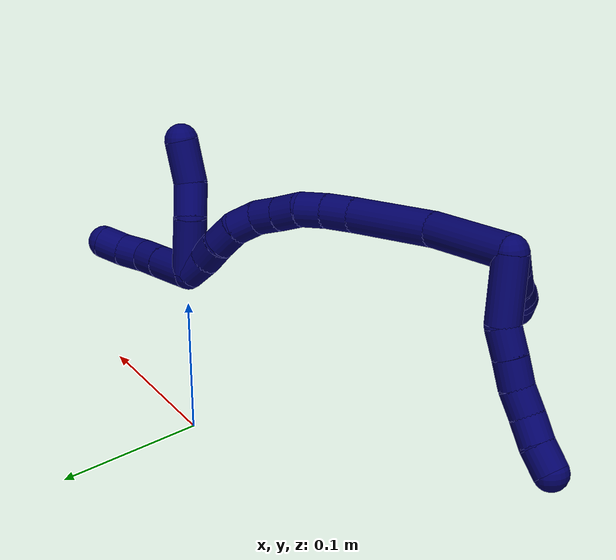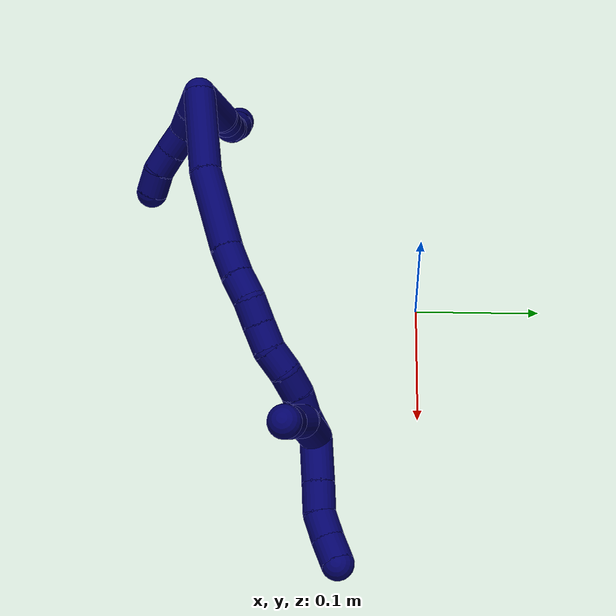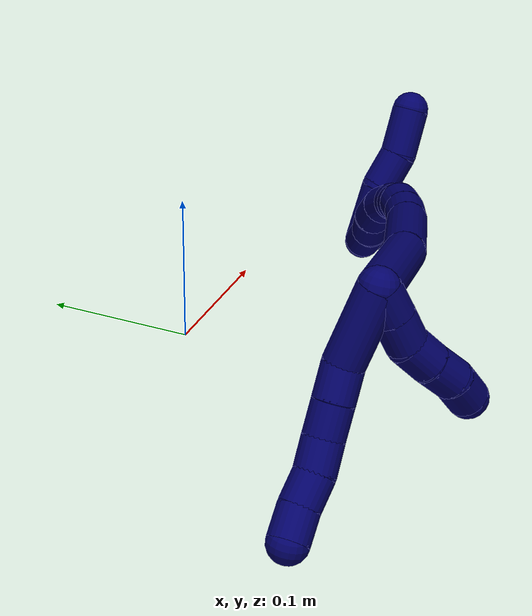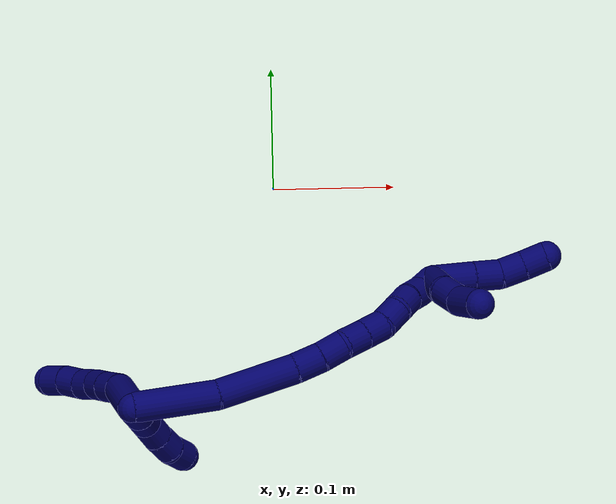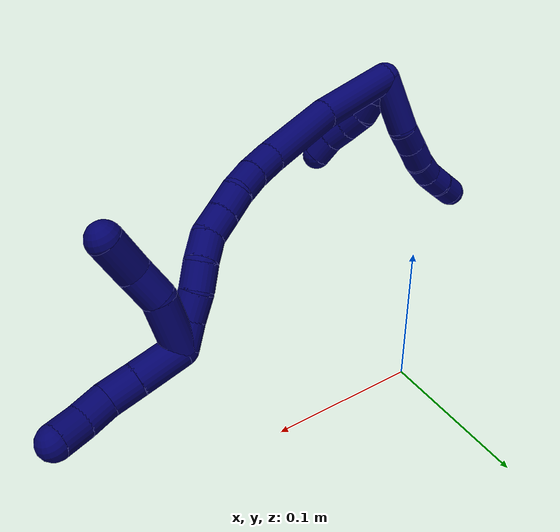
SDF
<sdf version="1.7">
 <world name="default">
  <model name="7">
   <static>0</static>
   <link name="7">
    <collision name="collision-cylinder-e_1_2_8">
     <pose>0.002093 0.004005 -0.023601 -2.9735 0.087209 -0.95577</pose>
     <geometry><cylinder><radius>0.0125</radius><length>0.04806</length></cylinder></geometry>
     <surface>
      <friction><ode><mu>1.16</mu><mu2>1.16</mu2><slip1>0</slip1><slip2>0</slip2></ode></friction>
      <contact><ode><kp>1e+06</kp><kd>1</kd><max_vel>0</max_vel><min_depth>0.001</min_depth></ode></contact>
     </surface>
    </collision>
    <visual name="visual-cylinder-e_1_2_8">
     <pose>0.002093 0.004005 -0.023601 -2.9735 0.087209 -0.95577</pose>
     <geometry><cylinder><radius>0.0125</radius><length>0.04806</length></cylinder></geometry>
     <material><ambient>0.003922 0 0.403922 1</ambient></material>
    </visual>
    <collision name="collision-cylinder-e_2_8_9">
     <pose>0.001655 0.008659 -0.057481 -3.07849 -0.240979 2.63158</pose>
     <geometry><cylinder><radius>0.0125</radius><length>0.021211</length></cylinder></geometry>
     <surface>
      <friction><ode><mu>1.16</mu><mu2>1.16</mu2><slip1>0</slip1><slip2>0</slip2></ode></friction>
      <contact><ode><kp>1e+06</kp><kd>1</kd><max_vel>0</max_vel><min_depth>0.001</min_depth></ode></contact>
     </surface>
    </collision>
    <visual name="visual-cylinder-e_2_8_9">
     <pose>0.001655 0.008659 -0.057481 -3.07849 -0.240979 2.63158</pose>
     <geometry><cylinder><radius>0.0125</radius><length>0.021211</length></cylinder></geometry>
     <material><ambient>0.003922 0 0.403922 1</ambient></material>
    </visual>
    <collision name="collision-cylinder-e_3_9_10">
     <pose>-0.002992 0.009939 -0.077878 -3.0794 -0.205783 2.55642</pose>
     <geometry><cylinder><radius>0.0125</radius><length>0.020713</length></cylinder></geometry>
     <surface>
      <friction><ode><mu>1.16</mu><mu2>1.16</mu2><slip1>0</slip1><slip2>0</slip2></ode></friction>
      <contact><ode><kp>1e+06</kp><kd>1</kd><max_vel>0</max_vel><min_depth>0.001</min_depth></ode></contact>
     </surface>
    </collision>
    <visual name="visual-cylinder-e_3_9_10">
     <pose>-0.002992 0.009939 -0.077878 -3.0794 -0.205783 2.55642</pose>
     <geometry><cylinder><radius>0.0125</radius><length>0.020713</length></cylinder></geometry>
     <material><ambient>0.003922 0 0.403922 1</ambient></material>
    </visual>
    <collision name="collision-cylinder-e_4_10_11">
     <pose>-0.008853 0.011277 -0.097242 -3.0652 -0.383764 2.75312</pose>
     <geometry><cylinder><radius>0.0125</radius><length>0.02</length></cylinder></geometry>
     <surface>
      <friction><ode><mu>1.16</mu><mu2>1.16</mu2><slip1>0</slip1><slip2>0</slip2></ode></friction>
      <contact><ode><kp>1e+06</kp><kd>1</kd><max_vel>0</max_vel><min_depth>0.001</min_depth></ode></contact>
     </surface>
    </collision>
    <visual name="visual-cylinder-e_4_10_11">
     <pose>-0.008853 0.011277 -0.097242 -3.0652 -0.383764 2.75312</pose>
     <geometry><cylinder><radius>0.0125</radius><length>0.02</length></cylinder></geometry>
     <material><ambient>0.003922 0 0.403922 1</ambient></material>
    </visual>
    <collision name="collision-cylinder-e_5_11_12">
     <pose>-0.016914 0.014619 -0.115115 -2.84526 -0.4464 1.97823</pose>
     <geometry><cylinder><radius>0.0125</radius><length>0.020001</length></cylinder></geometry>
     <surface>
      <friction><ode><mu>1.16</mu><mu2>1.16</mu2><slip1>0</slip1><slip2>0</slip2></ode></friction>
      <contact><ode><kp>1e+06</kp><kd>1</kd><max_vel>0</max_vel><min_depth>0.001</min_depth></ode></contact>
     </surface>
    </collision>
    <visual name="visual-cylinder-e_5_11_12">
     <pose>-0.016914 0.014619 -0.115115 -2.84526 -0.4464 1.97823</pose>
     <geometry><cylinder><radius>0.0125</radius><length>0.020001</length></cylinder></geometry>
     <material><ambient>0.003922 0 0.403922 1</ambient></material>
    </visual>
    <collision name="collision-cylinder-e_6_12_6">
     <pose>-0.026449 0.018791 -0.132143 -2.96048 -0.548411 2.51709</pose>
     <geometry><cylinder><radius>0.0125</radius><length>0.020015</length></cylinder></geometry>
     <surface>
      <friction><ode><mu>1.16</mu><mu2>1.16</mu2><slip1>0</slip1><slip2>0</slip2></ode></friction>
      <contact><ode><kp>1e+06</kp><kd>1</kd><max_vel>0</max_vel><min_depth>0.001</min_depth></ode></contact>
     </surface>
    </collision>
    <visual name="visual-cylinder-e_6_12_6">
     <pose>-0.026449 0.018791 -0.132143 -2.96048 -0.548411 2.51709</pose>
     <geometry><cylinder><radius>0.0125</radius><length>0.020015</length></cylinder></geometry>
     <material><ambient>0.003922 0 0.403922 1</ambient></material>
    </visual>
    <collision name="collision-cylinder-e_1_2_13">
     <pose>0.002421 -0.006064 -0.007574 2.46643 0.244539 0.673486</pose>
     <geometry><cylinder><radius>0.0125</radius><length>0.02</length></cylinder></geometry>
     <surface>
      <friction><ode><mu>1.16</mu><mu2>1.16</mu2><slip1>0</slip1><slip2>0</slip2></ode></friction>
      <contact><ode><kp>1e+06</kp><kd>1</kd><max_vel>0</max_vel><min_depth>0.001</min_depth></ode></contact>
     </surface>
    </collision>
    <visual name="visual-cylinder-e_1_2_13">
     <pose>0.002421 -0.006064 -0.007574 2.46643 0.244539 0.673486</pose>
     <geometry><cylinder><radius>0.0125</radius><length>0.02</length></cylinder></geometry>
     <material><ambient>0.003922 0 0.403922 1</ambient></material>
    </visual>
    <collision name="collision-cylinder-e_2_13_14">
     <pose>0.007093 -0.018098 -0.022848 2.48212 0.226987 0.643012</pose>
     <geometry><cylinder><radius>0.0125</radius><length>0.02</length></cylinder></geometry>
     <surface>
      <friction><ode><mu>1.16</mu><mu2>1.16</mu2><slip1>0</slip1><slip2>0</slip2></ode></friction>
      <contact><ode><kp>1e+06</kp><kd>1</kd><max_vel>0</max_vel><min_depth>0.001</min_depth></ode></contact>
     </surface>
    </collision>
    <visual name="visual-cylinder-e_2_13_14">
     <pose>0.007093 -0.018098 -0.022848 2.48212 0.226987 0.643012</pose>
     <geometry><cylinder><radius>0.0125</radius><length>0.02</length></cylinder></geometry>
     <material><ambient>0.003922 0 0.403922 1</ambient></material>
    </visual>
    <collision name="collision-cylinder-e_3_14_15">
     <pose>0.011897 -0.032288 -0.035639 2.12532 0.25826 0.458145</pose>
     <geometry><cylinder><radius>0.0125</radius><length>0.02</length></cylinder></geometry>
     <surface>
      <friction><ode><mu>1.16</mu><mu2>1.16</mu2><slip1>0</slip1><slip2>0</slip2></ode></friction>
      <contact><ode><kp>1e+06</kp><kd>1</kd><max_vel>0</max_vel><min_depth>0.001</min_depth></ode></contact>
     </surface>
    </collision>
    <visual name="visual-cylinder-e_3_14_15">
     <pose>0.011897 -0.032288 -0.035639 2.12532 0.25826 0.458145</pose>
     <geometry><cylinder><radius>0.0125</radius><length>0.02</length></cylinder></geometry>
     <material><ambient>0.003922 0 0.403922 1</ambient></material>
    </visual>
    <collision name="collision-cylinder-e_4_15_16">
     <pose>0.017816 -0.048745 -0.045292 2.0765 0.343222 0.572039</pose>
     <geometry><cylinder><radius>0.0125</radius><length>0.02</length></cylinder></geometry>
     <surface>
      <friction><ode><mu>1.16</mu><mu2>1.16</mu2><slip1>0</slip1><slip2>0</slip2></ode></friction>
      <contact><ode><kp>1e+06</kp><kd>1</kd><max_vel>0</max_vel><min_depth>0.001</min_depth></ode></contact>
     </surface>
    </collision>
    <visual name="visual-cylinder-e_4_15_16">
     <pose>0.017816 -0.048745 -0.045292 2.0765 0.343222 0.572039</pose>
     <geometry><cylinder><radius>0.0125</radius><length>0.02</length></cylinder></geometry>
     <material><ambient>0.003922 0 0.403922 1</ambient></material>
    </visual>
    <collision name="collision-cylinder-e_5_16_5">
     <pose>0.025862 -0.063497 -0.055825 2.31276 0.48713 1.02844</pose>
     <geometry><cylinder><radius>0.0125</radius><length>0.02</length></cylinder></geometry>
     <surface>
      <friction><ode><mu>1.16</mu><mu2>1.16</mu2><slip1>0</slip1><slip2>0</slip2></ode></friction>
      <contact><ode><kp>1e+06</kp><kd>1</kd><max_vel>0</max_vel><min_depth>0.001</min_depth></ode></contact>
     </surface>
    </collision>
    <visual name="visual-cylinder-e_5_16_5">
     <pose>0.025862 -0.063497 -0.055825 2.31276 0.48713 1.02844</pose>
     <geometry><cylinder><radius>0.0125</radius><length>0.02</length></cylinder></geometry>
     <material><ambient>0.003922 0 0.403922 1</ambient></material>
    </visual>
    <collision name="collision-cylinder-e_1_2_17">
     <pose>0.032903 -0.010797 0.002487 1.34443 1.246 1.03883</pose>
     <geometry><cylinder><radius>0.0125</radius><length>0.069436</length></cylinder></geometry>
     <surface>
      <friction><ode><mu>1.16</mu><mu2>1.16</mu2><slip1>0</slip1><slip2>0</slip2></ode></friction>
      <contact><ode><kp>1e+06</kp><kd>1</kd><max_vel>0</max_vel><min_depth>0.001</min_depth></ode></contact>
     </surface>
    </collision>
    <visual name="visual-cylinder-e_1_2_17">
     <pose>0.032903 -0.010797 0.002487 1.34443 1.246 1.03883</pose>
     <geometry><cylinder><radius>0.0125</radius><length>0.069436</length></cylinder></geometry>
     <material><ambient>0.003922 0 0.403922 1</ambient></material>
    </visual>
    <collision name="collision-cylinder-e_2_17_18">
     <pose>0.098635 -0.026374 0.006443 1.2726 1.41962 1.13121</pose>
     <geometry><cylinder><radius>0.0125</radius><length>0.066416</length></cylinder></geometry>
     <surface>
      <friction><ode><mu>1.16</mu><mu2>1.16</mu2><slip1>0</slip1><slip2>0</slip2></ode></friction>
      <contact><ode><kp>1e+06</kp><kd>1</kd><max_vel>0</max_vel><min_depth>0.001</min_depth></ode></contact>
     </surface>
    </collision>
    <visual name="visual-cylinder-e_2_17_18">
     <pose>0.098635 -0.026374 0.006443 1.2726 1.41962 1.13121</pose>
     <geometry><cylinder><radius>0.0125</radius><length>0.066416</length></cylinder></geometry>
     <material><ambient>0.003922 0 0.403922 1</ambient></material>
    </visual>
    <collision name="collision-cylinder-e_3_18_19">
     <pose>0.143066 -0.031799 0.008499 0.832534 1.49579 0.778413</pose>
     <geometry><cylinder><radius>0.0125</radius><length>0.023268</length></cylinder></geometry>
     <surface>
      <friction><ode><mu>1.16</mu><mu2>1.16</mu2><slip1>0</slip1><slip2>0</slip2></ode></friction>
      <contact><ode><kp>1e+06</kp><kd>1</kd><max_vel>0</max_vel><min_depth>0.001</min_depth></ode></contact>
     </surface>
    </collision>
    <visual name="visual-cylinder-e_3_18_19">
     <pose>0.143066 -0.031799 0.008499 0.832534 1.49579 0.778413</pose>
     <geometry><cylinder><radius>0.0125</radius><length>0.023268</length></cylinder></geometry>
     <material><ambient>0.003922 0 0.403922 1</ambient></material>
    </visual>
    <collision name="collision-cylinder-e_4_19_20">
     <pose>0.165057 -0.032072 0.009069 -1.61477 1.53496 -1.57894</pose>
     <geometry><cylinder><radius>0.0125</radius><length>0.020794</length></cylinder></geometry>
     <surface>
      <friction><ode><mu>1.16</mu><mu2>1.16</mu2><slip1>0</slip1><slip2>0</slip2></ode></friction>
      <contact><ode><kp>1e+06</kp><kd>1</kd><max_vel>0</max_vel><min_depth>0.001</min_depth></ode></contact>
     </surface>
    </collision>
    <visual name="visual-cylinder-e_4_19_20">
     <pose>0.165057 -0.032072 0.009069 -1.61477 1.53496 -1.57894</pose>
     <geometry><cylinder><radius>0.0125</radius><length>0.020794</length></cylinder></geometry>
     <material><ambient>0.003922 0 0.403922 1</ambient></material>
    </visual>
    <collision name="collision-cylinder-e_5_20_21">
     <pose>0.185107 -0.032501 0.006552 2.83134 1.3054 2.73803</pose>
     <geometry><cylinder><radius>0.0125</radius><length>0.020021</length></cylinder></geometry>
     <surface>
      <friction><ode><mu>1.16</mu><mu2>1.16</mu2><slip1>0</slip1><slip2>0</slip2></ode></friction>
      <contact><ode><kp>1e+06</kp><kd>1</kd><max_vel>0</max_vel><min_depth>0.001</min_depth></ode></contact>
     </surface>
    </collision>
    <visual name="visual-cylinder-e_5_20_21">
     <pose>0.185107 -0.032501 0.006552 2.83134 1.3054 2.73803</pose>
     <geometry><cylinder><radius>0.0125</radius><length>0.020021</length></cylinder></geometry>
     <material><ambient>0.003922 0 0.403922 1</ambient></material>
    </visual>
    <collision name="collision-cylinder-e_6_21_22">
     <pose>0.204551 -0.033838 0.001932 2.89458 1.35096 2.83417</pose>
     <geometry><cylinder><radius>0.0125</radius><length>0.02005</length></cylinder></geometry>
     <surface>
      <friction><ode><mu>1.16</mu><mu2>1.16</mu2><slip1>0</slip1><slip2>0</slip2></ode></friction>
      <contact><ode><kp>1e+06</kp><kd>1</kd><max_vel>0</max_vel><min_depth>0.001</min_depth></ode></contact>
     </surface>
    </collision>
    <visual name="visual-cylinder-e_6_21_22">
     <pose>0.204551 -0.033838 0.001932 2.89458 1.35096 2.83417</pose>
     <geometry><cylinder><radius>0.0125</radius><length>0.02005</length></cylinder></geometry>
     <material><ambient>0.003922 0 0.403922 1</ambient></material>
    </visual>
    <collision name="collision-cylinder-e_7_22_23">
     <pose>0.223299 -0.032568 -0.004254 -2.72412 1.11015 -2.48327</pose>
     <geometry><cylinder><radius>0.0125</radius><length>0.020014</length></cylinder></geometry>
     <surface>
      <friction><ode><mu>1.16</mu><mu2>1.16</mu2><slip1>0</slip1><slip2>0</slip2></ode></friction>
      <contact><ode><kp>1e+06</kp><kd>1</kd><max_vel>0</max_vel><min_depth>0.001</min_depth></ode></contact>
     </surface>
    </collision>
    <visual name="visual-cylinder-e_7_22_23">
     <pose>0.223299 -0.032568 -0.004254 -2.72412 1.11015 -2.48327</pose>
     <geometry><cylinder><radius>0.0125</radius><length>0.020014</length></cylinder></geometry>
     <material><ambient>0.003922 0 0.403922 1</ambient></material>
    </visual>
    <collision name="collision-cylinder-e_8_23_24">
     <pose>0.239896 -0.030164 -0.014753 -3.04848 0.868368 -2.94132</pose>
     <geometry><cylinder><radius>0.0125</radius><length>0.02</length></cylinder></geometry>
     <surface>
      <friction><ode><mu>1.16</mu><mu2>1.16</mu2><slip1>0</slip1><slip2>0</slip2></ode></friction>
      <contact><ode><kp>1e+06</kp><kd>1</kd><max_vel>0</max_vel><min_depth>0.001</min_depth></ode></contact>
     </surface>
    </collision>
    <visual name="visual-cylinder-e_8_23_24">
     <pose>0.239896 -0.030164 -0.014753 -3.04848 0.868368 -2.94132</pose>
     <geometry><cylinder><radius>0.0125</radius><length>0.02</length></cylinder></geometry>
     <material><ambient>0.003922 0 0.403922 1</ambient></material>
    </visual>
    <collision name="collision-cylinder-e_9_24_25">
     <pose>0.254914 -0.030899 -0.027795 2.94213 0.830852 2.69545</pose>
     <geometry><cylinder><radius>0.0125</radius><length>0.02</length></cylinder></geometry>
     <surface>
      <friction><ode><mu>1.16</mu><mu2>1.16</mu2><slip1>0</slip1><slip2>0</slip2></ode></friction>
      <contact><ode><kp>1e+06</kp><kd>1</kd><max_vel>0</max_vel><min_depth>0.001</min_depth></ode></contact>
     </surface>
    </collision>
    <visual name="visual-cylinder-e_9_24_25">
     <pose>0.254914 -0.030899 -0.027795 2.94213 0.830852 2.69545</pose>
     <geometry><cylinder><radius>0.0125</radius><length>0.02</length></cylinder></geometry>
     <material><ambient>0.003922 0 0.403922 1</ambient></material>
    </visual>
    <collision name="collision-cylinder-e_10_25_1">
     <pose>0.270313 -0.031985 -0.04038 -3.09971 0.929643 -3.0581</pose>
     <geometry><cylinder><radius>0.0125</radius><length>0.02</length></cylinder></geometry>
     <surface>
      <friction><ode><mu>1.16</mu><mu2>1.16</mu2><slip1>0</slip1><slip2>0</slip2></ode></friction>
      <contact><ode><kp>1e+06</kp><kd>1</kd><max_vel>0</max_vel><min_depth>0.001</min_depth></ode></contact>
     </surface>
    </collision>
    <visual name="visual-cylinder-e_10_25_1">
     <pose>0.270313 -0.031985 -0.04038 -3.09971 0.929643 -3.0581</pose>
     <geometry><cylinder><radius>0.0125</radius><length>0.02</length></cylinder></geometry>
     <material><ambient>0.003922 0 0.403922 1</ambient></material>
    </visual>
    <collision name="collision-cylinder-e_1_1_26">
     <pose>0.275896 -0.032752 -0.025066 0.047771 -0.113561 -0.002716</pose>
     <geometry><cylinder><radius>0.0125</radius><length>0.042904</length></cylinder></geometry>
     <surface>
      <friction><ode><mu>1.16</mu><mu2>1.16</mu2><slip1>0</slip1><slip2>0</slip2></ode></friction>
      <contact><ode><kp>1e+06</kp><kd>1</kd><max_vel>0</max_vel><min_depth>0.001</min_depth></ode></contact>
     </surface>
    </collision>
    <visual name="visual-cylinder-e_1_1_26">
     <pose>0.275896 -0.032752 -0.025066 0.047771 -0.113561 -0.002716</pose>
     <geometry><cylinder><radius>0.0125</radius><length>0.042904</length></cylinder></geometry>
     <material><ambient>0.003922 0 0.403922 1</ambient></material>
    </visual>
    <collision name="collision-cylinder-e_2_26_27">
     <pose>0.274655 -0.037596 0.008154 0.310334 0.09469 0.014823</pose>
     <geometry><cylinder><radius>0.0125</radius><length>0.02517</length></cylinder></geometry>
     <surface>
      <friction><ode><mu>1.16</mu><mu2>1.16</mu2><slip1>0</slip1><slip2>0</slip2></ode></friction>
      <contact><ode><kp>1e+06</kp><kd>1</kd><max_vel>0</max_vel><min_depth>0.001</min_depth></ode></contact>
     </surface>
    </collision>
    <visual name="visual-cylinder-e_2_26_27">
     <pose>0.274655 -0.037596 0.008154 0.310334 0.09469 0.014823</pose>
     <geometry><cylinder><radius>0.0125</radius><length>0.02517</length></cylinder></geometry>
     <material><ambient>0.003922 0 0.403922 1</ambient></material>
    </visual>
    <collision name="collision-cylinder-e_3_27_4">
     <pose>0.278817 -0.042336 0.035741 0.058322 0.187243 0.005478</pose>
     <geometry><cylinder><radius>0.0125</radius><length>0.031926</length></cylinder></geometry>
     <surface>
      <friction><ode><mu>1.16</mu><mu2>1.16</mu2><slip1>0</slip1><slip2>0</slip2></ode></friction>
      <contact><ode><kp>1e+06</kp><kd>1</kd><max_vel>0</max_vel><min_depth>0.001</min_depth></ode></contact>
     </surface>
    </collision>
    <visual name="visual-cylinder-e_3_27_4">
     <pose>0.278817 -0.042336 0.035741 0.058322 0.187243 0.005478</pose>
     <geometry><cylinder><radius>0.0125</radius><length>0.031926</length></cylinder></geometry>
     <material><ambient>0.003922 0 0.403922 1</ambient></material>
    </visual>
    <collision name="collision-cylinder-e_1_1_28">
     <pose>0.294773 -0.03809 -0.045595 1.45173 1.19965 1.09102</pose>
     <geometry><cylinder><radius>0.0125</radius><length>0.035294</length></cylinder></geometry>
     <surface>
      <friction><ode><mu>1.16</mu><mu2>1.16</mu2><slip1>0</slip1><slip2>0</slip2></ode></friction>
      <contact><ode><kp>1e+06</kp><kd>1</kd><max_vel>0</max_vel><min_depth>0.001</min_depth></ode></contact>
     </surface>
    </collision>
    <visual name="visual-cylinder-e_1_1_28">
     <pose>0.294773 -0.03809 -0.045595 1.45173 1.19965 1.09102</pose>
     <geometry><cylinder><radius>0.0125</radius><length>0.035294</length></cylinder></geometry>
     <material><ambient>0.003922 0 0.403922 1</ambient></material>
    </visual>
    <collision name="collision-cylinder-e_2_28_29">
     <pose>0.321918 -0.048786 -0.044361 1.46203 1.1833 1.08461</pose>
     <geometry><cylinder><radius>0.0125</radius><length>0.023113</length></cylinder></geometry>
     <surface>
      <friction><ode><mu>1.16</mu><mu2>1.16</mu2><slip1>0</slip1><slip2>0</slip2></ode></friction>
      <contact><ode><kp>1e+06</kp><kd>1</kd><max_vel>0</max_vel><min_depth>0.001</min_depth></ode></contact>
     </surface>
    </collision>
    <visual name="visual-cylinder-e_2_28_29">
     <pose>0.321918 -0.048786 -0.044361 1.46203 1.1833 1.08461</pose>
     <geometry><cylinder><radius>0.0125</radius><length>0.023113</length></cylinder></geometry>
     <material><ambient>0.003922 0 0.403922 1</ambient></material>
    </visual>
    <collision name="collision-cylinder-e_3_29_30">
     <pose>0.343064 -0.054145 -0.042663 0.69423 1.41953 0.602665</pose>
     <geometry><cylinder><radius>0.0125</radius><length>0.021134</length></cylinder></geometry>
     <surface>
      <friction><ode><mu>1.16</mu><mu2>1.16</mu2><slip1>0</slip1><slip2>0</slip2></ode></friction>
      <contact><ode><kp>1e+06</kp><kd>1</kd><max_vel>0</max_vel><min_depth>0.001</min_depth></ode></contact>
     </surface>
    </collision>
    <visual name="visual-cylinder-e_3_29_30">
     <pose>0.343064 -0.054145 -0.042663 0.69423 1.41953 0.602665</pose>
     <geometry><cylinder><radius>0.0125</radius><length>0.021134</length></cylinder></geometry>
     <material><ambient>0.003922 0 0.403922 1</ambient></material>
    </visual>
    <collision name="collision-cylinder-e_4_30_3">
     <pose>0.363402 -0.055443 -0.038845 0.106883 1.31293 0.08238</pose>
     <geometry><cylinder><radius>0.0125</radius><length>0.020459</length></cylinder></geometry>
     <surface>
      <friction><ode><mu>1.16</mu><mu2>1.16</mu2><slip1>0</slip1><slip2>0</slip2></ode></friction>
      <contact><ode><kp>1e+06</kp><kd>1</kd><max_vel>0</max_vel><min_depth>0.001</min_depth></ode></contact>
     </surface>
    </collision>
    <visual name="visual-cylinder-e_4_30_3">
     <pose>0.363402 -0.055443 -0.038845 0.106883 1.31293 0.08238</pose>
     <geometry><cylinder><radius>0.0125</radius><length>0.020459</length></cylinder></geometry>
     <material><ambient>0.003922 0 0.403922 1</ambient></material>
    </visual>
    <collision name="collision-sphere-3">
     <pose>0.373293 -0.055721 -0.036252 0 -0 0</pose>
     <geometry><sphere><radius>0.0125</radius></sphere></geometry>
     <surface>
      <friction><ode><mu>1.16</mu><mu2>1.16</mu2><slip1>0</slip1><slip2>0</slip2></ode></friction>
      <contact><ode><kp>1e+06</kp><kd>1</kd><max_vel>0</max_vel><min_depth>0.001</min_depth></ode></contact>
     </surface>
    </collision>
    <visual name="visual-sphere-3">
     <pose>0.373293 -0.055721 -0.036252 0 -0 0</pose>
     <geometry><sphere><radius>0.0125</radius></sphere></geometry>
     <material><ambient>0.003922 0 0.403922 1</ambient></material>
    </visual>
    <collision name="collision-sphere-30">
     <pose>0.353511 -0.055164 -0.041439 0 -0 0</pose>
     <geometry><sphere><radius>0.0125</radius></sphere></geometry>
     <surface>
      <friction><ode><mu>1.16</mu><mu2>1.16</mu2><slip1>0</slip1><slip2>0</slip2></ode></friction>
      <contact><ode><kp>1e+06</kp><kd>1</kd><max_vel>0</max_vel><min_depth>0.001</min_depth></ode></contact>
     </surface>
    </collision>
    <visual name="visual-sphere-30">
     <pose>0.353511 -0.055164 -0.041439 0 -0 0</pose>
     <geometry><sphere><radius>0.0125</radius></sphere></geometry>
     <material><ambient>0.003922 0 0.403922 1</ambient></material>
    </visual>
    <collision name="collision-sphere-29">
     <pose>0.332617 -0.053127 -0.043887 0 -0 0</pose>
     <geometry><sphere><radius>0.0125</radius></sphere></geometry>
     <surface>
      <friction><ode><mu>1.16</mu><mu2>1.16</mu2><slip1>0</slip1><slip2>0</slip2></ode></friction>
      <contact><ode><kp>1e+06</kp><kd>1</kd><max_vel>0</max_vel><min_depth>0.001</min_depth></ode></contact>
     </surface>
    </collision>
    <visual name="visual-sphere-29">
     <pose>0.332617 -0.053127 -0.043887 0 -0 0</pose>
     <geometry><sphere><radius>0.0125</radius></sphere></geometry>
     <material><ambient>0.003922 0 0.403922 1</ambient></material>
    </visual>
    <collision name="collision-sphere-28">
     <pose>0.311218 -0.044445 -0.044835 0 -0 0</pose>
     <geometry><sphere><radius>0.0125</radius></sphere></geometry>
     <surface>
      <friction><ode><mu>1.16</mu><mu2>1.16</mu2><slip1>0</slip1><slip2>0</slip2></ode></friction>
      <contact><ode><kp>1e+06</kp><kd>1</kd><max_vel>0</max_vel><min_depth>0.001</min_depth></ode></contact>
     </surface>
    </collision>
    <visual name="visual-sphere-28">
     <pose>0.311218 -0.044445 -0.044835 0 -0 0</pose>
     <geometry><sphere><radius>0.0125</radius></sphere></geometry>
     <material><ambient>0.003922 0 0.403922 1</ambient></material>
    </visual>
    <collision name="collision-sphere-4">
     <pose>0.281788 -0.04325 0.051398 0 -0 0</pose>
     <geometry><sphere><radius>0.0125</radius></sphere></geometry>
     <surface>
      <friction><ode><mu>1.16</mu><mu2>1.16</mu2><slip1>0</slip1><slip2>0</slip2></ode></friction>
      <contact><ode><kp>1e+06</kp><kd>1</kd><max_vel>0</max_vel><min_depth>0.001</min_depth></ode></contact>
     </surface>
    </collision>
    <visual name="visual-sphere-4">
     <pose>0.281788 -0.04325 0.051398 0 -0 0</pose>
     <geometry><sphere><radius>0.0125</radius></sphere></geometry>
     <material><ambient>0.003922 0 0.403922 1</ambient></material>
    </visual>
    <collision name="collision-sphere-27">
     <pose>0.275845 -0.041422 0.020084 0 -0 0</pose>
     <geometry><sphere><radius>0.0125</radius></sphere></geometry>
     <surface>
      <friction><ode><mu>1.16</mu><mu2>1.16</mu2><slip1>0</slip1><slip2>0</slip2></ode></friction>
      <contact><ode><kp>1e+06</kp><kd>1</kd><max_vel>0</max_vel><min_depth>0.001</min_depth></ode></contact>
     </surface>
    </collision>
    <visual name="visual-sphere-27">
     <pose>0.275845 -0.041422 0.020084 0 -0 0</pose>
     <geometry><sphere><radius>0.0125</radius></sphere></geometry>
     <material><ambient>0.003922 0 0.403922 1</ambient></material>
    </visual>
    <collision name="collision-sphere-26">
     <pose>0.273465 -0.03377 -0.003776 0 -0 0</pose>
     <geometry><sphere><radius>0.0125</radius></sphere></geometry>
     <surface>
      <friction><ode><mu>1.16</mu><mu2>1.16</mu2><slip1>0</slip1><slip2>0</slip2></ode></friction>
      <contact><ode><kp>1e+06</kp><kd>1</kd><max_vel>0</max_vel><min_depth>0.001</min_depth></ode></contact>
     </surface>
    </collision>
    <visual name="visual-sphere-26">
     <pose>0.273465 -0.03377 -0.003776 0 -0 0</pose>
     <geometry><sphere><radius>0.0125</radius></sphere></geometry>
     <material><ambient>0.003922 0 0.403922 1</ambient></material>
    </visual>
    <collision name="collision-sphere-1">
     <pose>0.278327 -0.031735 -0.046356 0 -0 0</pose>
     <geometry><sphere><radius>0.0125</radius></sphere></geometry>
     <surface>
      <friction><ode><mu>1.16</mu><mu2>1.16</mu2><slip1>0</slip1><slip2>0</slip2></ode></friction>
      <contact><ode><kp>1e+06</kp><kd>1</kd><max_vel>0</max_vel><min_depth>0.001</min_depth></ode></contact>
     </surface>
    </collision>
    <visual name="visual-sphere-1">
     <pose>0.278327 -0.031735 -0.046356 0 -0 0</pose>
     <geometry><sphere><radius>0.0125</radius></sphere></geometry>
     <material><ambient>0.003922 0 0.403922 1</ambient></material>
    </visual>
    <collision name="collision-sphere-25">
     <pose>0.262299 -0.032235 -0.034404 0 -0 0</pose>
     <geometry><sphere><radius>0.0125</radius></sphere></geometry>
     <surface>
      <friction><ode><mu>1.16</mu><mu2>1.16</mu2><slip1>0</slip1><slip2>0</slip2></ode></friction>
      <contact><ode><kp>1e+06</kp><kd>1</kd><max_vel>0</max_vel><min_depth>0.001</min_depth></ode></contact>
     </surface>
    </collision>
    <visual name="visual-sphere-25">
     <pose>0.262299 -0.032235 -0.034404 0 -0 0</pose>
     <geometry><sphere><radius>0.0125</radius></sphere></geometry>
     <material><ambient>0.003922 0 0.403922 1</ambient></material>
    </visual>
    <collision name="collision-sphere-24">
     <pose>0.247529 -0.029563 -0.021186 0 -0 0</pose>
     <geometry><sphere><radius>0.0125</radius></sphere></geometry>
     <surface>
      <friction><ode><mu>1.16</mu><mu2>1.16</mu2><slip1>0</slip1><slip2>0</slip2></ode></friction>
      <contact><ode><kp>1e+06</kp><kd>1</kd><max_vel>0</max_vel><min_depth>0.001</min_depth></ode></contact>
     </surface>
    </collision>
    <visual name="visual-sphere-24">
     <pose>0.247529 -0.029563 -0.021186 0 -0 0</pose>
     <geometry><sphere><radius>0.0125</radius></sphere></geometry>
     <material><ambient>0.003922 0 0.403922 1</ambient></material>
    </visual>
    <collision name="collision-sphere-23">
     <pose>0.232263 -0.030765 -0.00832 0 -0 0</pose>
     <geometry><sphere><radius>0.0125</radius></sphere></geometry>
     <surface>
      <friction><ode><mu>1.16</mu><mu2>1.16</mu2><slip1>0</slip1><slip2>0</slip2></ode></friction>
      <contact><ode><kp>1e+06</kp><kd>1</kd><max_vel>0</max_vel><min_depth>0.001</min_depth></ode></contact>
     </surface>
    </collision>
    <visual name="visual-sphere-23">
     <pose>0.232263 -0.030765 -0.00832 0 -0 0</pose>
     <geometry><sphere><radius>0.0125</radius></sphere></geometry>
     <material><ambient>0.003922 0 0.403922 1</ambient></material>
    </visual>
    <collision name="collision-sphere-22">
     <pose>0.214335 -0.034372 -0.000188 0 -0 0</pose>
     <geometry><sphere><radius>0.0125</radius></sphere></geometry>
     <surface>
      <friction><ode><mu>1.16</mu><mu2>1.16</mu2><slip1>0</slip1><slip2>0</slip2></ode></friction>
      <contact><ode><kp>1e+06</kp><kd>1</kd><max_vel>0</max_vel><min_depth>0.001</min_depth></ode></contact>
     </surface>
    </collision>
    <visual name="visual-sphere-22">
     <pose>0.214335 -0.034372 -0.000188 0 -0 0</pose>
     <geometry><sphere><radius>0.0125</radius></sphere></geometry>
     <material><ambient>0.003922 0 0.403922 1</ambient></material>
    </visual>
    <collision name="collision-sphere-21">
     <pose>0.194767 -0.033303 0.004052 0 -0 0</pose>
     <geometry><sphere><radius>0.0125</radius></sphere></geometry>
     <surface>
      <friction><ode><mu>1.16</mu><mu2>1.16</mu2><slip1>0</slip1><slip2>0</slip2></ode></friction>
      <contact><ode><kp>1e+06</kp><kd>1</kd><max_vel>0</max_vel><min_depth>0.001</min_depth></ode></contact>
     </surface>
    </collision>
    <visual name="visual-sphere-21">
     <pose>0.194767 -0.033303 0.004052 0 -0 0</pose>
     <geometry><sphere><radius>0.0125</radius></sphere></geometry>
     <material><ambient>0.003922 0 0.403922 1</ambient></material>
    </visual>
    <collision name="collision-sphere-12">
     <pose>-0.021232 0.017253 -0.123743 0 -0 0</pose>
     <geometry><sphere><radius>0.0125</radius></sphere></geometry>
     <surface>
      <friction><ode><mu>1.16</mu><mu2>1.16</mu2><slip1>0</slip1><slip2>0</slip2></ode></friction>
      <contact><ode><kp>1e+06</kp><kd>1</kd><max_vel>0</max_vel><min_depth>0.001</min_depth></ode></contact>
     </surface>
    </collision>
    <visual name="visual-sphere-12">
     <pose>-0.021232 0.017253 -0.123743 0 -0 0</pose>
     <geometry><sphere><radius>0.0125</radius></sphere></geometry>
     <material><ambient>0.003922 0 0.403922 1</ambient></material>
    </visual>
    <collision name="collision-sphere-11">
     <pose>-0.012597 0.011984 -0.106488 0 -0 0</pose>
     <geometry><sphere><radius>0.0125</radius></sphere></geometry>
     <surface>
      <friction><ode><mu>1.16</mu><mu2>1.16</mu2><slip1>0</slip1><slip2>0</slip2></ode></friction>
      <contact><ode><kp>1e+06</kp><kd>1</kd><max_vel>0</max_vel><min_depth>0.001</min_depth></ode></contact>
     </surface>
    </collision>
    <visual name="visual-sphere-11">
     <pose>-0.012597 0.011984 -0.106488 0 -0 0</pose>
     <geometry><sphere><radius>0.0125</radius></sphere></geometry>
     <material><ambient>0.003922 0 0.403922 1</ambient></material>
    </visual>
    <collision name="collision-sphere-10">
     <pose>-0.005108 0.010569 -0.087996 0 -0 0</pose>
     <geometry><sphere><radius>0.0125</radius></sphere></geometry>
     <surface>
      <friction><ode><mu>1.16</mu><mu2>1.16</mu2><slip1>0</slip1><slip2>0</slip2></ode></friction>
      <contact><ode><kp>1e+06</kp><kd>1</kd><max_vel>0</max_vel><min_depth>0.001</min_depth></ode></contact>
     </surface>
    </collision>
    <visual name="visual-sphere-10">
     <pose>-0.005108 0.010569 -0.087996 0 -0 0</pose>
     <geometry><sphere><radius>0.0125</radius></sphere></geometry>
     <material><ambient>0.003922 0 0.403922 1</ambient></material>
    </visual>
    <collision name="collision-sphere-9">
     <pose>-0.000876 0.009309 -0.06776 0 -0 0</pose>
     <geometry><sphere><radius>0.0125</radius></sphere></geometry>
     <surface>
      <friction><ode><mu>1.16</mu><mu2>1.16</mu2><slip1>0</slip1><slip2>0</slip2></ode></friction>
      <contact><ode><kp>1e+06</kp><kd>1</kd><max_vel>0</max_vel><min_depth>0.001</min_depth></ode></contact>
     </surface>
    </collision>
    <visual name="visual-sphere-9">
     <pose>-0.000876 0.009309 -0.06776 0 -0 0</pose>
     <geometry><sphere><radius>0.0125</radius></sphere></geometry>
     <material><ambient>0.003922 0 0.403922 1</ambient></material>
    </visual>
    <collision name="collision-sphere-2">
     <geometry><sphere><radius>0.0125</radius></sphere></geometry>
     <surface>
      <friction><ode><mu>1.16</mu><mu2>1.16</mu2><slip1>0</slip1><slip2>0</slip2></ode></friction>
      <contact><ode><kp>1e+06</kp><kd>1</kd><max_vel>0</max_vel><min_depth>0.001</min_depth></ode></contact>
     </surface>
    </collision>
    <visual name="visual-sphere-2">
     <geometry><sphere><radius>0.0125</radius></sphere></geometry>
     <material><ambient>0.003922 0 0.403922 1</ambient></material>
    </visual>
    <collision name="collision-sphere-19">
     <pose>0.154667 -0.032444 0.009085 0 -0 0</pose>
     <geometry><sphere><radius>0.0125</radius></sphere></geometry>
     <surface>
      <friction><ode><mu>1.16</mu><mu2>1.16</mu2><slip1>0</slip1><slip2>0</slip2></ode></friction>
      <contact><ode><kp>1e+06</kp><kd>1</kd><max_vel>0</max_vel><min_depth>0.001</min_depth></ode></contact>
     </surface>
    </collision>
    <visual name="visual-sphere-19">
     <pose>0.154667 -0.032444 0.009085 0 -0 0</pose>
     <geometry><sphere><radius>0.0125</radius></sphere></geometry>
     <material><ambient>0.003922 0 0.403922 1</ambient></material>
    </visual>
    <collision name="collision-sphere-8">
     <pose>0.004186 0.00801 -0.047203 0 -0 0</pose>
     <geometry><sphere><radius>0.0125</radius></sphere></geometry>
     <surface>
      <friction><ode><mu>1.16</mu><mu2>1.16</mu2><slip1>0</slip1><slip2>0</slip2></ode></friction>
      <contact><ode><kp>1e+06</kp><kd>1</kd><max_vel>0</max_vel><min_depth>0.001</min_depth></ode></contact>
     </surface>
    </collision>
    <visual name="visual-sphere-8">
     <pose>0.004186 0.00801 -0.047203 0 -0 0</pose>
     <geometry><sphere><radius>0.0125</radius></sphere></geometry>
     <material><ambient>0.003922 0 0.403922 1</ambient></material>
    </visual>
    <collision name="collision-sphere-6">
     <pose>-0.031666 0.020329 -0.140543 0 -0 0</pose>
     <geometry><sphere><radius>0.0125</radius></sphere></geometry>
     <surface>
      <friction><ode><mu>1.16</mu><mu2>1.16</mu2><slip1>0</slip1><slip2>0</slip2></ode></friction>
      <contact><ode><kp>1e+06</kp><kd>1</kd><max_vel>0</max_vel><min_depth>0.001</min_depth></ode></contact>
     </surface>
    </collision>
    <visual name="visual-sphere-6">
     <pose>-0.031666 0.020329 -0.140543 0 -0 0</pose>
     <geometry><sphere><radius>0.0125</radius></sphere></geometry>
     <material><ambient>0.003922 0 0.403922 1</ambient></material>
    </visual>
    <collision name="collision-sphere-13">
     <pose>0.004842 -0.012129 -0.015148 0 -0 0</pose>
     <geometry><sphere><radius>0.0125</radius></sphere></geometry>
     <surface>
      <friction><ode><mu>1.16</mu><mu2>1.16</mu2><slip1>0</slip1><slip2>0</slip2></ode></friction>
      <contact><ode><kp>1e+06</kp><kd>1</kd><max_vel>0</max_vel><min_depth>0.001</min_depth></ode></contact>
     </surface>
    </collision>
    <visual name="visual-sphere-13">
     <pose>0.004842 -0.012129 -0.015148 0 -0 0</pose>
     <geometry><sphere><radius>0.0125</radius></sphere></geometry>
     <material><ambient>0.003922 0 0.403922 1</ambient></material>
    </visual>
    <collision name="collision-sphere-14">
     <pose>0.009343 -0.024068 -0.030549 0 -0 0</pose>
     <geometry><sphere><radius>0.0125</radius></sphere></geometry>
     <surface>
      <friction><ode><mu>1.16</mu><mu2>1.16</mu2><slip1>0</slip1><slip2>0</slip2></ode></friction>
      <contact><ode><kp>1e+06</kp><kd>1</kd><max_vel>0</max_vel><min_depth>0.001</min_depth></ode></contact>
     </surface>
    </collision>
    <visual name="visual-sphere-14">
     <pose>0.009343 -0.024068 -0.030549 0 -0 0</pose>
     <geometry><sphere><radius>0.0125</radius></sphere></geometry>
     <material><ambient>0.003922 0 0.403922 1</ambient></material>
    </visual>
    <collision name="collision-sphere-15">
     <pose>0.014451 -0.040507 -0.04073 0 -0 0</pose>
     <geometry><sphere><radius>0.0125</radius></sphere></geometry>
     <surface>
      <friction><ode><mu>1.16</mu><mu2>1.16</mu2><slip1>0</slip1><slip2>0</slip2></ode></friction>
      <contact><ode><kp>1e+06</kp><kd>1</kd><max_vel>0</max_vel><min_depth>0.001</min_depth></ode></contact>
     </surface>
    </collision>
    <visual name="visual-sphere-15">
     <pose>0.014451 -0.040507 -0.04073 0 -0 0</pose>
     <geometry><sphere><radius>0.0125</radius></sphere></geometry>
     <material><ambient>0.003922 0 0.403922 1</ambient></material>
    </visual>
    <collision name="collision-sphere-16">
     <pose>0.021181 -0.056983 -0.049853 0 -0 0</pose>
     <geometry><sphere><radius>0.0125</radius></sphere></geometry>
     <surface>
      <friction><ode><mu>1.16</mu><mu2>1.16</mu2><slip1>0</slip1><slip2>0</slip2></ode></friction>
      <contact><ode><kp>1e+06</kp><kd>1</kd><max_vel>0</max_vel><min_depth>0.001</min_depth></ode></contact>
     </surface>
    </collision>
    <visual name="visual-sphere-16">
     <pose>0.021181 -0.056983 -0.049853 0 -0 0</pose>
     <geometry><sphere><radius>0.0125</radius></sphere></geometry>
     <material><ambient>0.003922 0 0.403922 1</ambient></material>
    </visual>
    <collision name="collision-sphere-5">
     <pose>0.030543 -0.070011 -0.061796 0 -0 0</pose>
     <geometry><sphere><radius>0.0125</radius></sphere></geometry>
     <surface>
      <friction><ode><mu>1.16</mu><mu2>1.16</mu2><slip1>0</slip1><slip2>0</slip2></ode></friction>
      <contact><ode><kp>1e+06</kp><kd>1</kd><max_vel>0</max_vel><min_depth>0.001</min_depth></ode></contact>
     </surface>
    </collision>
    <visual name="visual-sphere-5">
     <pose>0.030543 -0.070011 -0.061796 0 -0 0</pose>
     <geometry><sphere><radius>0.0125</radius></sphere></geometry>
     <material><ambient>0.003922 0 0.403922 1</ambient></material>
    </visual>
    <collision name="collision-sphere-17">
     <pose>0.065806 -0.021593 0.004973 0 -0 0</pose>
     <geometry><sphere><radius>0.0125</radius></sphere></geometry>
     <surface>
      <friction><ode><mu>1.16</mu><mu2>1.16</mu2><slip1>0</slip1><slip2>0</slip2></ode></friction>
      <contact><ode><kp>1e+06</kp><kd>1</kd><max_vel>0</max_vel><min_depth>0.001</min_depth></ode></contact>
     </surface>
    </collision>
    <visual name="visual-sphere-17">
     <pose>0.065806 -0.021593 0.004973 0 -0 0</pose>
     <geometry><sphere><radius>0.0125</radius></sphere></geometry>
     <material><ambient>0.003922 0 0.403922 1</ambient></material>
    </visual>
    <collision name="collision-sphere-18">
     <pose>0.131465 -0.031154 0.007912 0 -0 0</pose>
     <geometry><sphere><radius>0.0125</radius></sphere></geometry>
     <surface>
      <friction><ode><mu>1.16</mu><mu2>1.16</mu2><slip1>0</slip1><slip2>0</slip2></ode></friction>
      <contact><ode><kp>1e+06</kp><kd>1</kd><max_vel>0</max_vel><min_depth>0.001</min_depth></ode></contact>
     </surface>
    </collision>
    <visual name="visual-sphere-18">
     <pose>0.131465 -0.031154 0.007912 0 -0 0</pose>
     <geometry><sphere><radius>0.0125</radius></sphere></geometry>
     <material><ambient>0.003922 0 0.403922 1</ambient></material>
    </visual>
    <collision name="collision-sphere-20">
     <pose>0.175448 -0.0317 0.009053 0 -0 0</pose>
     <geometry><sphere><radius>0.0125</radius></sphere></geometry>
     <surface>
      <friction><ode><mu>1.16</mu><mu2>1.16</mu2><slip1>0</slip1><slip2>0</slip2></ode></friction>
      <contact><ode><kp>1e+06</kp><kd>1</kd><max_vel>0</max_vel><min_depth>0.001</min_depth></ode></contact>
     </surface>
    </collision>
    <visual name="visual-sphere-20">
     <pose>0.175448 -0.0317 0.009053 0 -0 0</pose>
     <geometry><sphere><radius>0.0125</radius></sphere></geometry>
     <material><ambient>0.003922 0 0.403922 1</ambient></material>
    </visual>
    <inertial>
     <pose>0.13825 -0.024135 -0.025132 0 -0 0</pose>
     <mass>0.75</mass>
     <inertia><ixx>6.9e-05</ixx><ixy>0</ixy><ixz>0</ixz><iyy>9.2e-05</iyy><iyz>0</iyz><izz>-6.8e-05</izz></inertia>
    </inertial>
   </link>
   <pose>-0.114737 -0.173728 0.135234 0.213781 0.20608 0.454123</pose>
  </model>
 </world>
</sdf>
